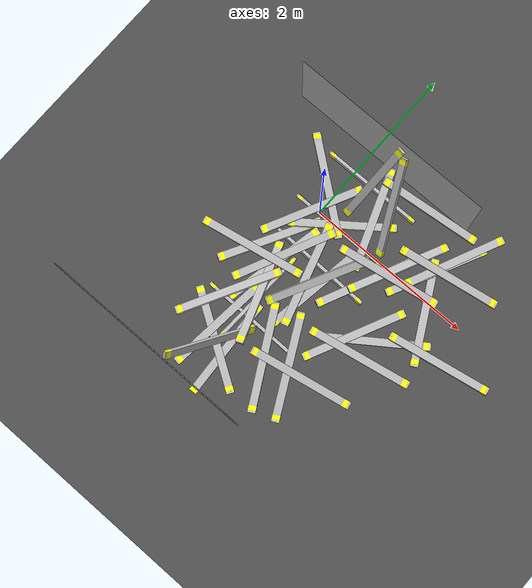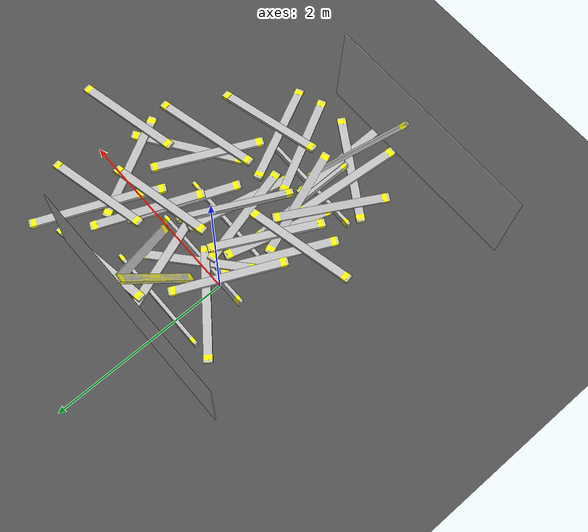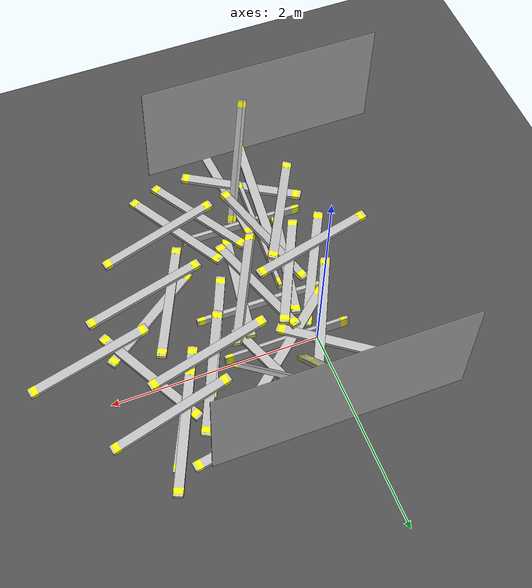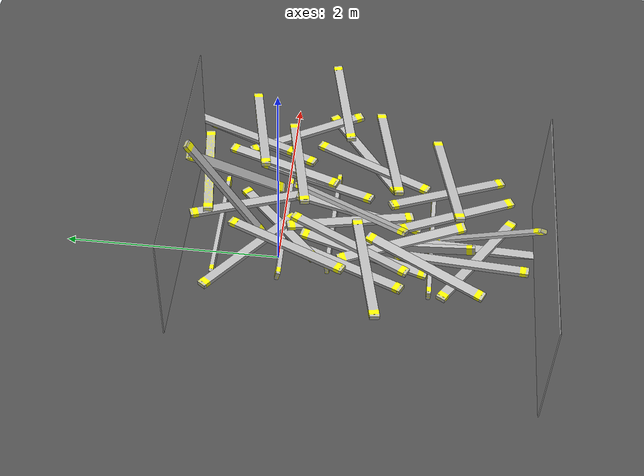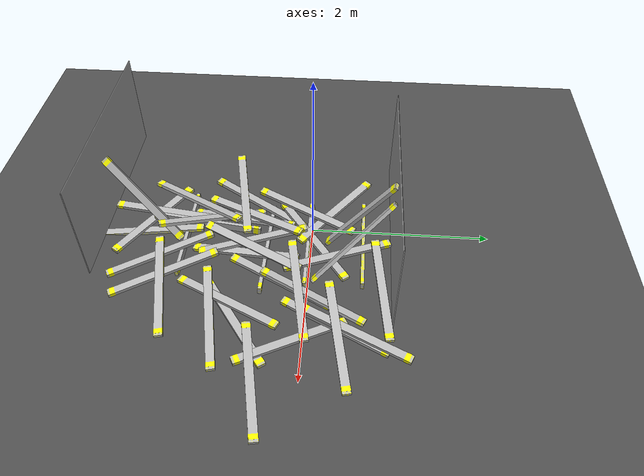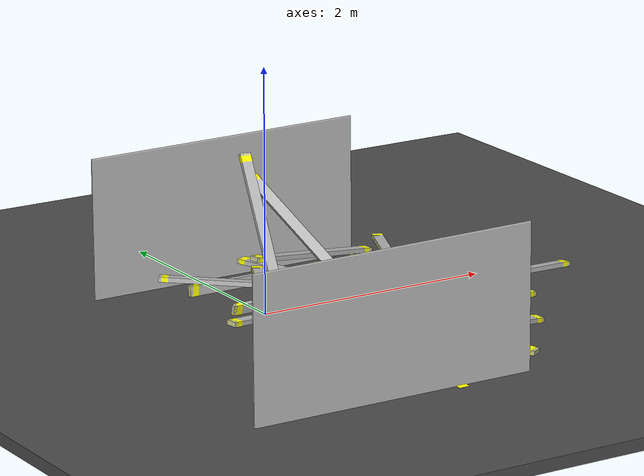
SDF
<sdf version="1.6">
 <world name="default">
  <model name="ground_plane">
   <static>1</static>
   <link name="link">
    <collision name="collision">
     <geometry><plane><normal>0 0 1</normal><size>100 100</size></plane></geometry>
     <surface><friction><ode><mu>100</mu><mu2>50</mu2></ode></friction></surface>
    </collision>
    <visual name="visual">
     <cast_shadows>0</cast_shadows>
     <geometry><plane><normal>0 0 1</normal><size>100 100</size></plane></geometry>
     <material>
      <script><uri>file://media/materials/scripts/gazebo.material</uri><name>Gazebo/Grey</name></script>
     </material>
    </visual>
   </link>
  </model>
  <model name="asphalt_plane">
   <static>1</static>
   <link name="link">
    <collision name="collision"><geometry><box><size>20 20 0.1</size></box></geometry></collision>
    <visual name="visual">
     <cast_shadows>0</cast_shadows>
     <geometry><box><size>20 20 0.1</size></box></geometry>
     <material>
      <script>
       <uri>model://asphalt_plane/materials/scripts</uri>
       <uri>model://asphalt_plane/materials/textures</uri>
       <name>vrc/asphalt</name>
      </script>
     </material>
    </visual>
   </link>
   <pose>0.013797 -0.037077 0 0 -0 0</pose>
  </model>
  <model name="nist_maze_wall_240">
   <static>1</static>
   <link name="nist__maze_wall_240_link">
    <collision name="collision">
     <geometry>
      <mesh><uri>model://nist_maze_wall_240/meshes/nist_maze_wall_240.dae</uri><scale>1 1 1</scale></mesh>
     </geometry>
    </collision>
    <visual name="visual">
     <geometry>
      <mesh><uri>model://nist_maze_wall_240/meshes/nist_maze_wall_240.dae</uri><scale>1 1 1</scale></mesh>
     </geometry>
    </visual>
   </link>
   <pose>1.36498 0.295254 0.622091 3.14159 -1.56495 3.14159</pose>
  </model>
  <model name="nist_maze_wall_240_clone">
   <static>1</static>
   <link name="nist__maze_wall_240_link">
    <collision name="collision">
     <geometry>
      <mesh><uri>model://nist_maze_wall_240/meshes/nist_maze_wall_240.dae</uri><scale>1 1 1</scale></mesh>
     </geometry>
    </collision>
    <visual name="visual">
     <geometry>
      <mesh><uri>model://nist_maze_wall_240/meshes/nist_maze_wall_240.dae</uri><scale>1 1 1</scale></mesh>
     </geometry>
    </visual>
   </link>
   <pose>0.867042 -2.96104 0.6203 3.14159 -1.56495 3.14159</pose>
  </model>
  <model name="lumber_2x4x48">
   <link name="link">
    <inertial>
     <mass>1.4111</mass>
     <inertia><ixx>0.0011</ixx><ixy>0</ixy><ixz>0</ixz><iyy>0.1771</iyy><iyz>0</iyz><izz>0.1763</izz></inertia>
    </inertial>
    <collision name="collision">
     <geometry><box><size>1.2192 0.038 0.0888</size></box></geometry>
     <surface>
      <bounce><restitution_coefficient>0.01</restitution_coefficient><threshold>5</threshold></bounce>
      <friction><ode><mu>5</mu><mu2>5</mu2></ode></friction>
      <contact>
       <ode>
        <soft_cfm>0.001</soft_cfm>
        <kp>10000</kp>
        <kd>1000</kd>
        <max_vel>0.01</max_vel>
        <min_depth>0.001</min_depth>
       </ode>
      </contact>
     </surface>
    </collision>
    <visual name="visual">
     <geometry><mesh><uri>model://drc_practice_2x4/meshes/2x4x48.dae</uri><scale>1 1 1</scale></mesh></geometry>
    </visual>
   </link>
   <pose>0.299809 -0.022151 0.093348 0.216763 -0.000303 0.002883</pose>
  </model>
  <model name="lumber_2x4x48_clone_1">
   <link name="link">
    <inertial>
     <mass>1.4111</mass>
     <inertia><ixx>0.0011</ixx><ixy>0</ixy><ixz>0</ixz><iyy>0.1771</iyy><iyz>0</iyz><izz>0.1763</izz></inertia>
    </inertial>
    <collision name="collision">
     <geometry><box><size>1.2192 0.038 0.0888</size></box></geometry>
     <surface>
      <bounce><restitution_coefficient>0.01</restitution_coefficient><threshold>5</threshold></bounce>
      <friction><ode><mu>5</mu><mu2>5</mu2></ode></friction>
      <contact>
       <ode>
        <soft_cfm>0.001</soft_cfm>
        <kp>10000</kp>
        <kd>1000</kd>
        <max_vel>0.01</max_vel>
        <min_depth>0.001</min_depth>
       </ode>
      </contact>
     </surface>
    </collision>
    <visual name="visual">
     <geometry><mesh><uri>model://drc_practice_2x4/meshes/2x4x48.dae</uri><scale>1 1 1</scale></mesh></geometry>
    </visual>
   </link>
   <pose>0.260186 0.579401 0.09277 -0.01427 -0.000237 0.001057</pose>
  </model>
  <model name="lumber_2x4x48_clone_2">
   <link name="link">
    <inertial>
     <mass>1.4111</mass>
     <inertia><ixx>0.0011</ixx><ixy>0</ixy><ixz>0</ixz><iyy>0.1771</iyy><iyz>0</iyz><izz>0.1763</izz></inertia>
    </inertial>
    <collision name="collision">
     <geometry><box><size>1.2192 0.038 0.0888</size></box></geometry>
     <surface>
      <bounce><restitution_coefficient>0.01</restitution_coefficient><threshold>5</threshold></bounce>
      <friction><ode><mu>5</mu><mu2>5</mu2></ode></friction>
      <contact>
       <ode>
        <soft_cfm>0.001</soft_cfm>
        <kp>10000</kp>
        <kd>1000</kd>
        <max_vel>0.01</max_vel>
        <min_depth>0.001</min_depth>
       </ode>
      </contact>
     </surface>
    </collision>
    <visual name="visual">
     <geometry><mesh><uri>model://drc_practice_2x4/meshes/2x4x48.dae</uri><scale>1 1 1</scale></mesh></geometry>
    </visual>
   </link>
   <pose>0.40343 -0.479826 0.106397 -0.072152 0.025249 -0.0211</pose>
  </model>
  <model name="lumber_2x4x48_clone_3_clone">
   <link name="link">
    <inertial>
     <mass>1.4111</mass>
     <inertia><ixx>0.0011</ixx><ixy>0</ixy><ixz>0</ixz><iyy>0.1771</iyy><iyz>0</iyz><izz>0.1763</izz></inertia>
    </inertial>
    <collision name="collision">
     <geometry><box><size>1.2192 0.038 0.0888</size></box></geometry>
     <surface>
      <bounce><restitution_coefficient>0.01</restitution_coefficient><threshold>5</threshold></bounce>
      <friction><ode><mu>5</mu><mu2>5</mu2></ode></friction>
      <contact>
       <ode>
        <soft_cfm>0.001</soft_cfm>
        <kp>10000</kp>
        <kd>1000</kd>
        <max_vel>0.01</max_vel>
        <min_depth>0.001</min_depth>
       </ode>
      </contact>
     </surface>
    </collision>
    <visual name="visual">
     <geometry><mesh><uri>model://drc_practice_2x4/meshes/2x4x48.dae</uri><scale>1 1 1</scale></mesh></geometry>
    </visual>
   </link>
   <pose>-0.116595 0.25156 0.213472 1.50046 0.031697 -0.657545</pose>
  </model>
  <model name="lumber_2x4x48_clone_3_clone_0_clone_0">
   <link name="link">
    <inertial>
     <mass>1.4111</mass>
     <inertia><ixx>0.0011</ixx><ixy>0</ixy><ixz>0</ixz><iyy>0.1771</iyy><iyz>0</iyz><izz>0.1763</izz></inertia>
    </inertial>
    <collision name="collision">
     <geometry><box><size>1.2192 0.038 0.0888</size></box></geometry>
     <surface>
      <bounce><restitution_coefficient>0.01</restitution_coefficient><threshold>5</threshold></bounce>
      <friction><ode><mu>5</mu><mu2>5</mu2></ode></friction>
      <contact>
       <ode>
        <soft_cfm>0.001</soft_cfm>
        <kp>10000</kp>
        <kd>1000</kd>
        <max_vel>0.01</max_vel>
        <min_depth>0.001</min_depth>
       </ode>
      </contact>
     </surface>
    </collision>
    <visual name="visual">
     <geometry><mesh><uri>model://drc_practice_2x4/meshes/2x4x48.dae</uri><scale>1 1 1</scale></mesh></geometry>
    </visual>
   </link>
   <pose>0.294475 0.029636 0.150905 1.51378 0.133494 0.678541</pose>
  </model>
  <model name="lumber_2x4x48_clone_3_clone_0_clone_0_clone_0">
   <link name="link">
    <inertial>
     <mass>1.4111</mass>
     <inertia><ixx>0.0011</ixx><ixy>0</ixy><ixz>0</ixz><iyy>0.1771</iyy><iyz>0</iyz><izz>0.1763</izz></inertia>
    </inertial>
    <collision name="collision">
     <geometry><box><size>1.2192 0.038 0.0888</size></box></geometry>
     <surface>
      <bounce><restitution_coefficient>0.01</restitution_coefficient><threshold>5</threshold></bounce>
      <friction><ode><mu>5</mu><mu2>5</mu2></ode></friction>
      <contact>
       <ode>
        <soft_cfm>0.001</soft_cfm>
        <kp>10000</kp>
        <kd>1000</kd>
        <max_vel>0.01</max_vel>
        <min_depth>0.001</min_depth>
       </ode>
      </contact>
     </surface>
    </collision>
    <visual name="visual">
     <geometry><mesh><uri>model://drc_practice_2x4/meshes/2x4x48.dae</uri><scale>1 1 1</scale></mesh></geometry>
    </visual>
   </link>
   <pose>0.068638 -1.83077 0.128017 1.61887 -0.029542 2.5735</pose>
  </model>
  <model name="lumber_2x4x48_clone_0_clone_0">
   <link name="link">
    <inertial>
     <mass>1.4111</mass>
     <inertia><ixx>0.0011</ixx><ixy>0</ixy><ixz>0</ixz><iyy>0.1771</iyy><iyz>0</iyz><izz>0.1763</izz></inertia>
    </inertial>
    <collision name="collision">
     <geometry><box><size>1.2192 0.038 0.0888</size></box></geometry>
     <surface>
      <bounce><restitution_coefficient>0.01</restitution_coefficient><threshold>5</threshold></bounce>
      <friction><ode><mu>5</mu><mu2>5</mu2></ode></friction>
      <contact>
       <ode>
        <soft_cfm>0.001</soft_cfm>
        <kp>10000</kp>
        <kd>1000</kd>
        <max_vel>0.01</max_vel>
        <min_depth>0.001</min_depth>
       </ode>
      </contact>
     </surface>
    </collision>
    <visual name="visual">
     <geometry><mesh><uri>model://drc_practice_2x4/meshes/2x4x48.dae</uri><scale>1 1 1</scale></mesh></geometry>
    </visual>
   </link>
   <pose>0.227233 -1.40603 0.089349 0.029567 0.000624 -0.008838</pose>
  </model>
  <model name="lumber_2x4x48_clone_3_clone_0_clone_1_clone_clone">
   <link name="link">
    <inertial>
     <mass>1.4111</mass>
     <inertia><ixx>0.0011</ixx><ixy>0</ixy><ixz>0</ixz><iyy>0.1771</iyy><iyz>0</iyz><izz>0.1763</izz></inertia>
    </inertial>
    <collision name="collision">
     <geometry><box><size>1.2192 0.038 0.0888</size></box></geometry>
     <surface>
      <bounce><restitution_coefficient>0.01</restitution_coefficient><threshold>5</threshold></bounce>
      <friction><ode><mu>5</mu><mu2>5</mu2></ode></friction>
      <contact>
       <ode>
        <soft_cfm>0.001</soft_cfm>
        <kp>10000</kp>
        <kd>1000</kd>
        <max_vel>0.01</max_vel>
        <min_depth>0.001</min_depth>
       </ode>
      </contact>
     </surface>
    </collision>
    <visual name="visual">
     <geometry><mesh><uri>model://drc_practice_2x4/meshes/2x4x48.dae</uri><scale>1 1 1</scale></mesh></geometry>
    </visual>
   </link>
   <pose>0.122564 -1.19447 0.156664 -0.001536 0.104658 1.54007</pose>
  </model>
  <model name="lumber_2x4x48_clone_3_clone_0_clone_1_clone_clone_0">
   <link name="link">
    <inertial>
     <mass>1.4111</mass>
     <inertia><ixx>0.0011</ixx><ixy>0</ixy><ixz>0</ixz><iyy>0.1771</iyy><iyz>0</iyz><izz>0.1763</izz></inertia>
    </inertial>
    <collision name="collision">
     <geometry><box><size>1.2192 0.038 0.0888</size></box></geometry>
     <surface>
      <bounce><restitution_coefficient>0.01</restitution_coefficient><threshold>5</threshold></bounce>
      <friction><ode><mu>5</mu><mu2>5</mu2></ode></friction>
      <contact>
       <ode>
        <soft_cfm>0.001</soft_cfm>
        <kp>10000</kp>
        <kd>1000</kd>
        <max_vel>0.01</max_vel>
        <min_depth>0.001</min_depth>
       </ode>
      </contact>
     </surface>
    </collision>
    <visual name="visual">
     <geometry><mesh><uri>model://drc_practice_2x4/meshes/2x4x48.dae</uri><scale>1 1 1</scale></mesh></geometry>
    </visual>
   </link>
   <pose>0.521841 -0.706496 0.138551 1.61232 -0.114029 1.40547</pose>
  </model>
  <model name="lumber_2x4x48_clone_3_clone_0_clone_clone_0">
   <link name="link">
    <inertial>
     <mass>1.4111</mass>
     <inertia><ixx>0.0011</ixx><ixy>0</ixy><ixz>0</ixz><iyy>0.1771</iyy><iyz>0</iyz><izz>0.1763</izz></inertia>
    </inertial>
    <collision name="collision">
     <geometry><box><size>1.2192 0.038 0.0888</size></box></geometry>
     <surface>
      <bounce><restitution_coefficient>0.01</restitution_coefficient><threshold>5</threshold></bounce>
      <friction><ode><mu>5</mu><mu2>5</mu2></ode></friction>
      <contact>
       <ode>
        <soft_cfm>0.001</soft_cfm>
        <kp>10000</kp>
        <kd>1000</kd>
        <max_vel>0.01</max_vel>
        <min_depth>0.001</min_depth>
       </ode>
      </contact>
     </surface>
    </collision>
    <visual name="visual">
     <geometry><mesh><uri>model://drc_practice_2x4/meshes/2x4x48.dae</uri><scale>1 1 1</scale></mesh></geometry>
    </visual>
   </link>
   <pose>1.3955 -0.708259 0.066325 1.55393 0.000566 0.618301</pose>
  </model>
  <model name="lumber_2x4x48_clone_3_clone_0_clone_1_clone_clone_3">
   <link name="link">
    <inertial>
     <mass>1.4111</mass>
     <inertia><ixx>0.0011</ixx><ixy>0</ixy><ixz>0</ixz><iyy>0.1771</iyy><iyz>0</iyz><izz>0.1763</izz></inertia>
    </inertial>
    <collision name="collision">
     <geometry><box><size>1.2192 0.038 0.0888</size></box></geometry>
     <surface>
      <bounce><restitution_coefficient>0.01</restitution_coefficient><threshold>5</threshold></bounce>
      <friction><ode><mu>5</mu><mu2>5</mu2></ode></friction>
      <contact>
       <ode>
        <soft_cfm>0.001</soft_cfm>
        <kp>10000</kp>
        <kd>1000</kd>
        <max_vel>0.01</max_vel>
        <min_depth>0.001</min_depth>
       </ode>
      </contact>
     </surface>
    </collision>
    <visual name="visual">
     <geometry><mesh><uri>model://drc_practice_2x4/meshes/2x4x48.dae</uri><scale>1 1 1</scale></mesh></geometry>
    </visual>
   </link>
   <pose>0.011224 -0.78563 0.145827 1.47225 -0.113051 1.34703</pose>
  </model>
  <model name="lumber_2x4x48_clone_3_clone_0_clone_1_clone_0">
   <link name="link">
    <inertial>
     <mass>1.4111</mass>
     <inertia><ixx>0.0011</ixx><ixy>0</ixy><ixz>0</ixz><iyy>0.1771</iyy><iyz>0</iyz><izz>0.1763</izz></inertia>
    </inertial>
    <collision name="collision">
     <geometry><box><size>1.2192 0.038 0.0888</size></box></geometry>
     <surface>
      <bounce><restitution_coefficient>0.01</restitution_coefficient><threshold>5</threshold></bounce>
      <friction><ode><mu>5</mu><mu2>5</mu2></ode></friction>
      <contact>
       <ode>
        <soft_cfm>0.001</soft_cfm>
        <kp>10000</kp>
        <kd>1000</kd>
        <max_vel>0.01</max_vel>
        <min_depth>0.001</min_depth>
       </ode>
      </contact>
     </surface>
    </collision>
    <visual name="visual">
     <geometry><mesh><uri>model://drc_practice_2x4/meshes/2x4x48.dae</uri><scale>1 1 1</scale></mesh></geometry>
    </visual>
   </link>
   <pose>0.285411 0.522611 0.557321 1.58891 -0.955968 1.41395</pose>
  </model>
  <model name="lumber_2x4x48_clone_3_clone_0_clone_1_clone_1">
   <link name="link">
    <inertial>
     <mass>1.4111</mass>
     <inertia><ixx>0.0011</ixx><ixy>0</ixy><ixz>0</ixz><iyy>0.1771</iyy><iyz>0</iyz><izz>0.1763</izz></inertia>
    </inertial>
    <collision name="collision">
     <geometry><box><size>1.2192 0.038 0.0888</size></box></geometry>
     <surface>
      <bounce><restitution_coefficient>0.01</restitution_coefficient><threshold>5</threshold></bounce>
      <friction><ode><mu>5</mu><mu2>5</mu2></ode></friction>
      <contact>
       <ode>
        <soft_cfm>0.001</soft_cfm>
        <kp>10000</kp>
        <kd>1000</kd>
        <max_vel>0.01</max_vel>
        <min_depth>0.001</min_depth>
       </ode>
      </contact>
     </surface>
    </collision>
    <visual name="visual">
     <geometry><mesh><uri>model://drc_practice_2x4/meshes/2x4x48.dae</uri><scale>1 1 1</scale></mesh></geometry>
    </visual>
   </link>
   <pose>-0.019981 -1.68158 0.164661 -1.62173 -0.035128 -1.66607</pose>
  </model>
  <model name="lumber_2x4x48_clone_3_clone_0_clone_1_clone_2">
   <link name="link">
    <inertial>
     <mass>1.4111</mass>
     <inertia><ixx>0.0011</ixx><ixy>0</ixy><ixz>0</ixz><iyy>0.1771</iyy><iyz>0</iyz><izz>0.1763</izz></inertia>
    </inertial>
    <collision name="collision">
     <geometry><box><size>1.2192 0.038 0.0888</size></box></geometry>
     <surface>
      <bounce><restitution_coefficient>0.01</restitution_coefficient><threshold>5</threshold></bounce>
      <friction><ode><mu>5</mu><mu2>5</mu2></ode></friction>
      <contact>
       <ode>
        <soft_cfm>0.001</soft_cfm>
        <kp>10000</kp>
        <kd>1000</kd>
        <max_vel>0.01</max_vel>
        <min_depth>0.001</min_depth>
       </ode>
      </contact>
     </surface>
    </collision>
    <visual name="visual">
     <geometry><mesh><uri>model://drc_practice_2x4/meshes/2x4x48.dae</uri><scale>1 1 1</scale></mesh></geometry>
    </visual>
   </link>
   <pose>0.224885 -1.82956 0.09117 -1.56318 0.103382 -1.52226</pose>
  </model>
  <model name="lumber_2x4x48_clone_3_clone_0_clone_clone_0_clone_0_clone">
   <link name="link">
    <inertial>
     <mass>1.4111</mass>
     <inertia><ixx>0.0011</ixx><ixy>0</ixy><ixz>0</ixz><iyy>0.1771</iyy><iyz>0</iyz><izz>0.1763</izz></inertia>
    </inertial>
    <collision name="collision">
     <geometry><box><size>1.2192 0.038 0.0888</size></box></geometry>
     <surface>
      <bounce><restitution_coefficient>0.01</restitution_coefficient><threshold>5</threshold></bounce>
      <friction><ode><mu>5</mu><mu2>5</mu2></ode></friction>
      <contact>
       <ode>
        <soft_cfm>0.001</soft_cfm>
        <kp>10000</kp>
        <kd>1000</kd>
        <max_vel>0.01</max_vel>
        <min_depth>0.001</min_depth>
       </ode>
      </contact>
     </surface>
    </collision>
    <visual name="visual">
     <geometry><mesh><uri>model://drc_practice_2x4/meshes/2x4x48.dae</uri><scale>1 1 1</scale></mesh></geometry>
    </visual>
   </link>
   <pose>0.606662 0.461635 0.473095 -0.906832 0.700177 -1.1021</pose>
  </model>
  <model name="lumber_2x4x48_clone_3_clone_0_clone_clone_0_clone_0_clone_0">
   <link name="link">
    <inertial>
     <mass>1.4111</mass>
     <inertia><ixx>0.0011</ixx><ixy>0</ixy><ixz>0</ixz><iyy>0.1771</iyy><iyz>0</iyz><izz>0.1763</izz></inertia>
    </inertial>
    <collision name="collision">
     <geometry><box><size>1.2192 0.038 0.0888</size></box></geometry>
     <surface>
      <bounce><restitution_coefficient>0.01</restitution_coefficient><threshold>5</threshold></bounce>
      <friction><ode><mu>5</mu><mu2>5</mu2></ode></friction>
      <contact>
       <ode>
        <soft_cfm>0.001</soft_cfm>
        <kp>10000</kp>
        <kd>1000</kd>
        <max_vel>0.01</max_vel>
        <min_depth>0.001</min_depth>
       </ode>
      </contact>
     </surface>
    </collision>
    <visual name="visual">
     <geometry><mesh><uri>model://drc_practice_2x4/meshes/2x4x48.dae</uri><scale>1 1 1</scale></mesh></geometry>
    </visual>
   </link>
   <pose>0.10718 -1.12676 0.227917 -1.37828 -0.109397 -1.22917</pose>
  </model>
  <model name="lumber_2x4x48_clone_3_clone_0_clone_clone_0_clone_0_clone_3">
   <link name="link">
    <inertial>
     <mass>1.4111</mass>
     <inertia><ixx>0.0011</ixx><ixy>0</ixy><ixz>0</ixz><iyy>0.1771</iyy><iyz>0</iyz><izz>0.1763</izz></inertia>
    </inertial>
    <collision name="collision">
     <geometry><box><size>1.2192 0.038 0.0888</size></box></geometry>
     <surface>
      <bounce><restitution_coefficient>0.01</restitution_coefficient><threshold>5</threshold></bounce>
      <friction><ode><mu>5</mu><mu2>5</mu2></ode></friction>
      <contact>
       <ode>
        <soft_cfm>0.001</soft_cfm>
        <kp>10000</kp>
        <kd>1000</kd>
        <max_vel>0.01</max_vel>
        <min_depth>0.001</min_depth>
       </ode>
      </contact>
     </surface>
    </collision>
    <visual name="visual">
     <geometry><mesh><uri>model://drc_practice_2x4/meshes/2x4x48.dae</uri><scale>1 1 1</scale></mesh></geometry>
    </visual>
   </link>
   <pose>0.365817 -0.638747 0.179042 -1.50341 0.094534 -1.28603</pose>
  </model>
  <model name="lumber_2x4x48_clone_3_clone_0_clone_clone_0_clone_0_clone_4">
   <link name="link">
    <inertial>
     <mass>1.4111</mass>
     <inertia><ixx>0.0011</ixx><ixy>0</ixy><ixz>0</ixz><iyy>0.1771</iyy><iyz>0</iyz><izz>0.1763</izz></inertia>
    </inertial>
    <collision name="collision">
     <geometry><box><size>1.2192 0.038 0.0888</size></box></geometry>
     <surface>
      <bounce><restitution_coefficient>0.01</restitution_coefficient><threshold>5</threshold></bounce>
      <friction><ode><mu>5</mu><mu2>5</mu2></ode></friction>
      <contact>
       <ode>
        <soft_cfm>0.001</soft_cfm>
        <kp>10000</kp>
        <kd>1000</kd>
        <max_vel>0.01</max_vel>
        <min_depth>0.001</min_depth>
       </ode>
      </contact>
     </surface>
    </collision>
    <visual name="visual">
     <geometry><mesh><uri>model://drc_practice_2x4/meshes/2x4x48.dae</uri><scale>1 1 1</scale></mesh></geometry>
    </visual>
   </link>
   <pose>0.864944 -1.53555 0.135789 -1.57089 0.112029 -1.09624</pose>
  </model>
  <model name="lumber_2x4x48_clone_3_clone_0_clone_clone_0_clone_0_clone_5">
   <link name="link">
    <inertial>
     <mass>1.4111</mass>
     <inertia><ixx>0.0011</ixx><ixy>0</ixy><ixz>0</ixz><iyy>0.1771</iyy><iyz>0</iyz><izz>0.1763</izz></inertia>
    </inertial>
    <collision name="collision">
     <geometry><box><size>1.2192 0.038 0.0888</size></box></geometry>
     <surface>
      <bounce><restitution_coefficient>0.01</restitution_coefficient><threshold>5</threshold></bounce>
      <friction><ode><mu>5</mu><mu2>5</mu2></ode></friction>
      <contact>
       <ode>
        <soft_cfm>0.001</soft_cfm>
        <kp>10000</kp>
        <kd>1000</kd>
        <max_vel>0.01</max_vel>
        <min_depth>0.001</min_depth>
       </ode>
      </contact>
     </surface>
    </collision>
    <visual name="visual">
     <geometry><mesh><uri>model://drc_practice_2x4/meshes/2x4x48.dae</uri><scale>1 1 1</scale></mesh></geometry>
    </visual>
   </link>
   <pose>1.59935 -0.109616 0.085956 -1.58206 -0.033671 -1.07877</pose>
  </model>
  <model name="lumber_2x4x48_clone_3_clone_0_clone_clone_0_clone_0_clone_8">
   <link name="link">
    <inertial>
     <mass>1.4111</mass>
     <inertia><ixx>0.0011</ixx><ixy>0</ixy><ixz>0</ixz><iyy>0.1771</iyy><iyz>0</iyz><izz>0.1763</izz></inertia>
    </inertial>
    <collision name="collision">
     <geometry><box><size>1.2192 0.038 0.0888</size></box></geometry>
     <surface>
      <bounce><restitution_coefficient>0.01</restitution_coefficient><threshold>5</threshold></bounce>
      <friction><ode><mu>5</mu><mu2>5</mu2></ode></friction>
      <contact>
       <ode>
        <soft_cfm>0.001</soft_cfm>
        <kp>10000</kp>
        <kd>1000</kd>
        <max_vel>0.01</max_vel>
        <min_depth>0.001</min_depth>
       </ode>
      </contact>
     </surface>
    </collision>
    <visual name="visual">
     <geometry><mesh><uri>model://drc_practice_2x4/meshes/2x4x48.dae</uri><scale>1 1 1</scale></mesh></geometry>
    </visual>
   </link>
   <pose>0.595626 -1.63115 0.12749 1.62221 0.094399 -1.07543</pose>
  </model>
  <model name="lumber_2x4x48_clone_3_clone_0_clone_clone_0_clone_0_clone_10">
   <link name="link">
    <inertial>
     <mass>1.4111</mass>
     <inertia><ixx>0.0011</ixx><ixy>0</ixy><ixz>0</ixz><iyy>0.1771</iyy><iyz>0</iyz><izz>0.1763</izz></inertia>
    </inertial>
    <collision name="collision">
     <geometry><box><size>1.2192 0.038 0.0888</size></box></geometry>
     <surface>
      <bounce><restitution_coefficient>0.01</restitution_coefficient><threshold>5</threshold></bounce>
      <friction><ode><mu>5</mu><mu2>5</mu2></ode></friction>
      <contact>
       <ode>
        <soft_cfm>0.001</soft_cfm>
        <kp>10000</kp>
        <kd>1000</kd>
        <max_vel>0.01</max_vel>
        <min_depth>0.001</min_depth>
       </ode>
      </contact>
     </surface>
    </collision>
    <visual name="visual">
     <geometry><mesh><uri>model://drc_practice_2x4/meshes/2x4x48.dae</uri><scale>1 1 1</scale></mesh></geometry>
    </visual>
   </link>
   <pose>0.513111 0.302192 0.162434 -1.56505 0.016705 -1.21567</pose>
  </model>
  <model name="lumber_2x4x48_clone_3_clone_0_clone_clone_0_clone_0_clone_11_clone">
   <link name="link">
    <inertial>
     <mass>1.4111</mass>
     <inertia><ixx>0.0011</ixx><ixy>0</ixy><ixz>0</ixz><iyy>0.1771</iyy><iyz>0</iyz><izz>0.1763</izz></inertia>
    </inertial>
    <collision name="collision">
     <geometry><box><size>1.2192 0.038 0.0888</size></box></geometry>
     <surface>
      <bounce><restitution_coefficient>0.01</restitution_coefficient><threshold>5</threshold></bounce>
      <friction><ode><mu>5</mu><mu2>5</mu2></ode></friction>
      <contact>
       <ode>
        <soft_cfm>0.001</soft_cfm>
        <kp>10000</kp>
        <kd>1000</kd>
        <max_vel>0.01</max_vel>
        <min_depth>0.001</min_depth>
       </ode>
      </contact>
     </surface>
    </collision>
    <visual name="visual">
     <geometry><mesh><uri>model://drc_practice_2x4/meshes/2x4x48.dae</uri><scale>1 1 1</scale></mesh></geometry>
    </visual>
   </link>
   <pose>0.088234 -1.89288 0.451214 0.688234 -0.6451 -2.04294</pose>
  </model>
  <model name="lumber_2x4x48_clone_3_clone_0_clone_clone_0_clone_0_clone_11_clone_1">
   <link name="link">
    <inertial>
     <mass>1.4111</mass>
     <inertia><ixx>0.0011</ixx><ixy>0</ixy><ixz>0</ixz><iyy>0.1771</iyy><iyz>0</iyz><izz>0.1763</izz></inertia>
    </inertial>
    <collision name="collision">
     <geometry><box><size>1.2192 0.038 0.0888</size></box></geometry>
     <surface>
      <bounce><restitution_coefficient>0.01</restitution_coefficient><threshold>5</threshold></bounce>
      <friction><ode><mu>5</mu><mu2>5</mu2></ode></friction>
      <contact>
       <ode>
        <soft_cfm>0.001</soft_cfm>
        <kp>10000</kp>
        <kd>1000</kd>
        <max_vel>0.01</max_vel>
        <min_depth>0.001</min_depth>
       </ode>
      </contact>
     </surface>
    </collision>
    <visual name="visual">
     <geometry><mesh><uri>model://drc_practice_2x4/meshes/2x4x48.dae</uri><scale>1 1 1</scale></mesh></geometry>
    </visual>
   </link>
   <pose>-0.196885 -0.61826 0.202233 1.60048 -0.115759 -2.0561</pose>
  </model>
  <model name="lumber_2x4x48_clone_3_clone_0_clone_clone_0_clone_0_clone_11_clone_4">
   <link name="link">
    <inertial>
     <mass>1.4111</mass>
     <inertia><ixx>0.0011</ixx><ixy>0</ixy><ixz>0</ixz><iyy>0.1771</iyy><iyz>0</iyz><izz>0.1763</izz></inertia>
    </inertial>
    <collision name="collision">
     <geometry><box><size>1.2192 0.038 0.0888</size></box></geometry>
     <surface>
      <bounce><restitution_coefficient>0.01</restitution_coefficient><threshold>5</threshold></bounce>
      <friction><ode><mu>5</mu><mu2>5</mu2></ode></friction>
      <contact>
       <ode>
        <soft_cfm>0.001</soft_cfm>
        <kp>10000</kp>
        <kd>1000</kd>
        <max_vel>0.01</max_vel>
        <min_depth>0.001</min_depth>
       </ode>
      </contact>
     </surface>
    </collision>
    <visual name="visual">
     <geometry><mesh><uri>model://drc_practice_2x4/meshes/2x4x48.dae</uri><scale>1 1 1</scale></mesh></geometry>
    </visual>
   </link>
   <pose>-0.154399 -1.34676 0.236722 -1.40062 0.027752 -2.07064</pose>
  </model>
  <model name="lumber_2x4x48_clone_3_clone_0_clone_clone_0_clone_0_clone_11_clone_5">
   <link name="link">
    <inertial>
     <mass>1.4111</mass>
     <inertia><ixx>0.0011</ixx><ixy>0</ixy><ixz>0</ixz><iyy>0.1771</iyy><iyz>0</iyz><izz>0.1763</izz></inertia>
    </inertial>
    <collision name="collision">
     <geometry><box><size>1.2192 0.038 0.0888</size></box></geometry>
     <surface>
      <bounce><restitution_coefficient>0.01</restitution_coefficient><threshold>5</threshold></bounce>
      <friction><ode><mu>5</mu><mu2>5</mu2></ode></friction>
      <contact>
       <ode>
        <soft_cfm>0.001</soft_cfm>
        <kp>10000</kp>
        <kd>1000</kd>
        <max_vel>0.01</max_vel>
        <min_depth>0.001</min_depth>
       </ode>
      </contact>
     </surface>
    </collision>
    <visual name="visual">
     <geometry><mesh><uri>model://drc_practice_2x4/meshes/2x4x48.dae</uri><scale>1 1 1</scale></mesh></geometry>
    </visual>
   </link>
   <pose>0.034982 -0.650134 0.238507 -1.65138 0.048189 -2.02357</pose>
  </model>
  <model name="lumber_2x4x48_clone_3_clone_0_clone_clone_0_clone_0_clone_11_clone_6">
   <link name="link">
    <inertial>
     <mass>1.4111</mass>
     <inertia><ixx>0.0011</ixx><ixy>0</ixy><ixz>0</ixz><iyy>0.1771</iyy><iyz>0</iyz><izz>0.1763</izz></inertia>
    </inertial>
    <collision name="collision">
     <geometry><box><size>1.2192 0.038 0.0888</size></box></geometry>
     <surface>
      <bounce><restitution_coefficient>0.01</restitution_coefficient><threshold>5</threshold></bounce>
      <friction><ode><mu>5</mu><mu2>5</mu2></ode></friction>
      <contact>
       <ode>
        <soft_cfm>0.001</soft_cfm>
        <kp>10000</kp>
        <kd>1000</kd>
        <max_vel>0.01</max_vel>
        <min_depth>0.001</min_depth>
       </ode>
      </contact>
     </surface>
    </collision>
    <visual name="visual">
     <geometry><mesh><uri>model://drc_practice_2x4/meshes/2x4x48.dae</uri><scale>1 1 1</scale></mesh></geometry>
    </visual>
   </link>
   <pose>0.901743 -0.273884 0.132847 1.58866 -0.106083 -1.99395</pose>
  </model>
  <model name="lumber_2x4x48_clone_3_clone_0_clone_clone_0_clone_0_clone_11_clone_7">
   <link name="link">
    <inertial>
     <mass>1.4111</mass>
     <inertia><ixx>0.0011</ixx><ixy>0</ixy><ixz>0</ixz><iyy>0.1771</iyy><iyz>0</iyz><izz>0.1763</izz></inertia>
    </inertial>
    <collision name="collision">
     <geometry><box><size>1.2192 0.038 0.0888</size></box></geometry>
     <surface>
      <bounce><restitution_coefficient>0.01</restitution_coefficient><threshold>5</threshold></bounce>
      <friction><ode><mu>5</mu><mu2>5</mu2></ode></friction>
      <contact>
       <ode>
        <soft_cfm>0.001</soft_cfm>
        <kp>10000</kp>
        <kd>1000</kd>
        <max_vel>0.01</max_vel>
        <min_depth>0.001</min_depth>
       </ode>
      </contact>
     </surface>
    </collision>
    <visual name="visual">
     <geometry><mesh><uri>model://drc_practice_2x4/meshes/2x4x48.dae</uri><scale>1 1 1</scale></mesh></geometry>
    </visual>
   </link>
   <pose>0.497555 -0.623913 0.221162 1.1292 -0.029481 -2.0391</pose>
  </model>
  <model name="lumber_2x4x48_clone_3_clone_0_clone_clone_0_clone_0_clone_11_clone_10">
   <link name="link">
    <inertial>
     <mass>1.4111</mass>
     <inertia><ixx>0.0011</ixx><ixy>0</ixy><ixz>0</ixz><iyy>0.1771</iyy><iyz>0</iyz><izz>0.1763</izz></inertia>
    </inertial>
    <collision name="collision">
     <geometry><box><size>1.2192 0.038 0.0888</size></box></geometry>
     <surface>
      <bounce><restitution_coefficient>0.01</restitution_coefficient><threshold>5</threshold></bounce>
      <friction><ode><mu>5</mu><mu2>5</mu2></ode></friction>
      <contact>
       <ode>
        <soft_cfm>0.001</soft_cfm>
        <kp>10000</kp>
        <kd>1000</kd>
        <max_vel>0.01</max_vel>
        <min_depth>0.001</min_depth>
       </ode>
      </contact>
     </surface>
    </collision>
    <visual name="visual">
     <geometry><mesh><uri>model://drc_practice_2x4/meshes/2x4x48.dae</uri><scale>1 1 1</scale></mesh></geometry>
    </visual>
   </link>
   <pose>1.17819 -0.806267 0.101525 1.57773 -0.008492 -2.01799</pose>
  </model>
  <model name="lumber_2x4x48_clone_3_clone_0_clone_clone_0_clone_0_clone_11_clone_11">
   <link name="link">
    <inertial>
     <mass>1.4111</mass>
     <inertia><ixx>0.0011</ixx><ixy>0</ixy><ixz>0</ixz><iyy>0.1771</iyy><iyz>0</iyz><izz>0.1763</izz></inertia>
    </inertial>
    <collision name="collision">
     <geometry><box><size>1.2192 0.038 0.0888</size></box></geometry>
     <surface>
      <bounce><restitution_coefficient>0.01</restitution_coefficient><threshold>5</threshold></bounce>
      <friction><ode><mu>5</mu><mu2>5</mu2></ode></friction>
      <contact>
       <ode>
        <soft_cfm>0.001</soft_cfm>
        <kp>10000</kp>
        <kd>1000</kd>
        <max_vel>0.01</max_vel>
        <min_depth>0.001</min_depth>
       </ode>
      </contact>
     </surface>
    </collision>
    <visual name="visual">
     <geometry><mesh><uri>model://drc_practice_2x4/meshes/2x4x48.dae</uri><scale>1 1 1</scale></mesh></geometry>
    </visual>
   </link>
   <pose>1.40571 0.314827 0.102413 1.57192 -0.05497 -2.01801</pose>
  </model>
  <model name="lumber_2x4x48_clone_3_clone_0_clone_clone_0_clone_0_clone_11_clone_12">
   <link name="link">
    <inertial>
     <mass>1.4111</mass>
     <inertia><ixx>0.0011</ixx><ixy>0</ixy><ixz>0</ixz><iyy>0.1771</iyy><iyz>0</iyz><izz>0.1763</izz></inertia>
    </inertial>
    <collision name="collision">
     <geometry><box><size>1.2192 0.038 0.0888</size></box></geometry>
     <surface>
      <bounce><restitution_coefficient>0.01</restitution_coefficient><threshold>5</threshold></bounce>
      <friction><ode><mu>5</mu><mu2>5</mu2></ode></friction>
      <contact>
       <ode>
        <soft_cfm>0.001</soft_cfm>
        <kp>10000</kp>
        <kd>1000</kd>
        <max_vel>0.01</max_vel>
        <min_depth>0.001</min_depth>
       </ode>
      </contact>
     </surface>
    </collision>
    <visual name="visual">
     <geometry><mesh><uri>model://drc_practice_2x4/meshes/2x4x48.dae</uri><scale>1 1 1</scale></mesh></geometry>
    </visual>
   </link>
   <pose>1.48989 0.525493 0.125449 1.54331 -0.053922 -1.99667</pose>
  </model>
  <model name="lumber_2x4x48_clone_3_clone_0_clone_clone_0_clone_0_clone_11_clone_13">
   <link name="link">
    <inertial>
     <mass>1.4111</mass>
     <inertia><ixx>0.0011</ixx><ixy>0</ixy><ixz>0</ixz><iyy>0.1771</iyy><iyz>0</iyz><izz>0.1763</izz></inertia>
    </inertial>
    <collision name="collision">
     <geometry><box><size>1.2192 0.038 0.0888</size></box></geometry>
     <surface>
      <bounce><restitution_coefficient>0.01</restitution_coefficient><threshold>5</threshold></bounce>
      <friction><ode><mu>5</mu><mu2>5</mu2></ode></friction>
      <contact>
       <ode>
        <soft_cfm>0.001</soft_cfm>
        <kp>10000</kp>
        <kd>1000</kd>
        <max_vel>0.01</max_vel>
        <min_depth>0.001</min_depth>
       </ode>
      </contact>
     </surface>
    </collision>
    <visual name="visual">
     <geometry><mesh><uri>model://drc_practice_2x4/meshes/2x4x48.dae</uri><scale>1 1 1</scale></mesh></geometry>
    </visual>
   </link>
   <pose>1.07153 0.068197 0.136504 1.72436 -0.102272 -2.0066</pose>
  </model>
  <model name="lumber_2x4x48_clone_3_clone_0_clone_clone_0_clone_0_clone_11_clone_14">
   <link name="link">
    <inertial>
     <mass>1.4111</mass>
     <inertia><ixx>0.0011</ixx><ixy>0</ixy><ixz>0</ixz><iyy>0.1771</iyy><iyz>0</iyz><izz>0.1763</izz></inertia>
    </inertial>
    <collision name="collision">
     <geometry><box><size>1.2192 0.038 0.0888</size></box></geometry>
     <surface>
      <bounce><restitution_coefficient>0.01</restitution_coefficient><threshold>5</threshold></bounce>
      <friction><ode><mu>5</mu><mu2>5</mu2></ode></friction>
      <contact>
       <ode>
        <soft_cfm>0.001</soft_cfm>
        <kp>10000</kp>
        <kd>1000</kd>
        <max_vel>0.01</max_vel>
        <min_depth>0.001</min_depth>
       </ode>
      </contact>
     </surface>
    </collision>
    <visual name="visual">
     <geometry><mesh><uri>model://drc_practice_2x4/meshes/2x4x48.dae</uri><scale>1 1 1</scale></mesh></geometry>
    </visual>
   </link>
   <pose>-0.058442 -0.074377 0.255552 1.52743 -0.053313 -2.02341</pose>
  </model>
  <model name="lumber_2x4x48_clone_3_clone_0_clone_clone_0_clone_0_clone_11_clone_14_clone">
   <link name="link">
    <inertial>
     <mass>1.4111</mass>
     <inertia><ixx>0.0011</ixx><ixy>0</ixy><ixz>0</ixz><iyy>0.1771</iyy><iyz>0</iyz><izz>0.1763</izz></inertia>
    </inertial>
    <collision name="collision">
     <geometry><box><size>1.2192 0.038 0.0888</size></box></geometry>
     <surface>
      <bounce><restitution_coefficient>0.01</restitution_coefficient><threshold>5</threshold></bounce>
      <friction><ode><mu>5</mu><mu2>5</mu2></ode></friction>
      <contact>
       <ode>
        <soft_cfm>0.001</soft_cfm>
        <kp>10000</kp>
        <kd>1000</kd>
        <max_vel>0.01</max_vel>
        <min_depth>0.001</min_depth>
       </ode>
      </contact>
     </surface>
    </collision>
    <visual name="visual">
     <geometry><mesh><uri>model://drc_practice_2x4/meshes/2x4x48.dae</uri><scale>1 1 1</scale></mesh></geometry>
    </visual>
   </link>
   <pose>-0.271567 -0.818626 0.290732 1.54 -0.068554 -2.94354</pose>
  </model>
  <model name="lumber_2x4x48_clone_3_clone_0_clone_clone_0_clone_0_clone_11_clone_14_clone_clone">
   <link name="link">
    <inertial>
     <mass>1.4111</mass>
     <inertia><ixx>0.0011</ixx><ixy>0</ixy><ixz>0</ixz><iyy>0.1771</iyy><iyz>0</iyz><izz>0.1763</izz></inertia>
    </inertial>
    <collision name="collision">
     <geometry><box><size>1.2192 0.038 0.0888</size></box></geometry>
     <surface>
      <bounce><restitution_coefficient>0.01</restitution_coefficient><threshold>5</threshold></bounce>
      <friction><ode><mu>5</mu><mu2>5</mu2></ode></friction>
      <contact>
       <ode>
        <soft_cfm>0.001</soft_cfm>
        <kp>10000</kp>
        <kd>1000</kd>
        <max_vel>0.01</max_vel>
        <min_depth>0.001</min_depth>
       </ode>
      </contact>
     </surface>
    </collision>
    <visual name="visual">
     <geometry><mesh><uri>model://drc_practice_2x4/meshes/2x4x48.dae</uri><scale>1 1 1</scale></mesh></geometry>
    </visual>
   </link>
   <pose>1.37797 -0.955055 0.118907 1.52068 -0.080779 -2.94177</pose>
  </model>
  <model name="lumber_2x4x48_clone_3_clone_0_clone_clone_0_clone_0_clone_11_clone_14_clone_clone_0">
   <link name="link">
    <inertial>
     <mass>1.4111</mass>
     <inertia><ixx>0.0011</ixx><ixy>0</ixy><ixz>0</ixz><iyy>0.1771</iyy><iyz>0</iyz><izz>0.1763</izz></inertia>
    </inertial>
    <collision name="collision">
     <geometry><box><size>1.2192 0.038 0.0888</size></box></geometry>
     <surface>
      <bounce><restitution_coefficient>0.01</restitution_coefficient><threshold>5</threshold></bounce>
      <friction><ode><mu>5</mu><mu2>5</mu2></ode></friction>
      <contact>
       <ode>
        <soft_cfm>0.001</soft_cfm>
        <kp>10000</kp>
        <kd>1000</kd>
        <max_vel>0.01</max_vel>
        <min_depth>0.001</min_depth>
       </ode>
      </contact>
     </surface>
    </collision>
    <visual name="visual">
     <geometry><mesh><uri>model://drc_practice_2x4/meshes/2x4x48.dae</uri><scale>1 1 1</scale></mesh></geometry>
    </visual>
   </link>
   <pose>1.04823 -0.082891 0.219542 1.52313 -0.113246 -2.95382</pose>
  </model>
  <model name="lumber_2x4x48_clone_3_clone_0_clone_clone_0_clone_0_clone_11_clone_14_clone_clone_1">
   <link name="link">
    <inertial>
     <mass>1.4111</mass>
     <inertia><ixx>0.0011</ixx><ixy>0</ixy><ixz>0</ixz><iyy>0.1771</iyy><iyz>0</iyz><izz>0.1763</izz></inertia>
    </inertial>
    <collision name="collision">
     <geometry><box><size>1.2192 0.038 0.0888</size></box></geometry>
     <surface>
      <bounce><restitution_coefficient>0.01</restitution_coefficient><threshold>5</threshold></bounce>
      <friction><ode><mu>5</mu><mu2>5</mu2></ode></friction>
      <contact>
       <ode>
        <soft_cfm>0.001</soft_cfm>
        <kp>10000</kp>
        <kd>1000</kd>
        <max_vel>0.01</max_vel>
        <min_depth>0.001</min_depth>
       </ode>
      </contact>
     </surface>
    </collision>
    <visual name="visual">
     <geometry><mesh><uri>model://drc_practice_2x4/meshes/2x4x48.dae</uri><scale>1 1 1</scale></mesh></geometry>
    </visual>
   </link>
   <pose>0.922469 0.786307 0.142812 1.56681 -0.123325 -3.00737</pose>
  </model>
  <model name="lumber_2x4x48_clone_3_clone_0_clone_clone_0_clone_0_clone_11_clone_14_clone_clone_6">
   <link name="link">
    <inertial>
     <mass>1.4111</mass>
     <inertia><ixx>0.0011</ixx><ixy>0</ixy><ixz>0</ixz><iyy>0.1771</iyy><iyz>0</iyz><izz>0.1763</izz></inertia>
    </inertial>
    <collision name="collision">
     <geometry><box><size>1.2192 0.038 0.0888</size></box></geometry>
     <surface>
      <bounce><restitution_coefficient>0.01</restitution_coefficient><threshold>5</threshold></bounce>
      <friction><ode><mu>5</mu><mu2>5</mu2></ode></friction>
      <contact>
       <ode>
        <soft_cfm>0.001</soft_cfm>
        <kp>10000</kp>
        <kd>1000</kd>
        <max_vel>0.01</max_vel>
        <min_depth>0.001</min_depth>
       </ode>
      </contact>
     </surface>
    </collision>
    <visual name="visual">
     <geometry><mesh><uri>model://drc_practice_2x4/meshes/2x4x48.dae</uri><scale>1 1 1</scale></mesh></geometry>
    </visual>
   </link>
   <pose>1.04154 -1.5393 0.150627 1.49208 -0.130971 -2.9422</pose>
  </model>
  <model name="lumber_2x4x48_clone_3_clone_0_clone_clone_0_clone_0_clone_11_clone_14_clone_clone_7">
   <link name="link">
    <inertial>
     <mass>1.4111</mass>
     <inertia><ixx>0.0011</ixx><ixy>0</ixy><ixz>0</ixz><iyy>0.1771</iyy><iyz>0</iyz><izz>0.1763</izz></inertia>
    </inertial>
    <collision name="collision">
     <geometry><box><size>1.2192 0.038 0.0888</size></box></geometry>
     <surface>
      <bounce><restitution_coefficient>0.01</restitution_coefficient><threshold>5</threshold></bounce>
      <friction><ode><mu>5</mu><mu2>5</mu2></ode></friction>
      <contact>
       <ode>
        <soft_cfm>0.001</soft_cfm>
        <kp>10000</kp>
        <kd>1000</kd>
        <max_vel>0.01</max_vel>
        <min_depth>0.001</min_depth>
       </ode>
      </contact>
     </surface>
    </collision>
    <visual name="visual">
     <geometry><mesh><uri>model://drc_practice_2x4/meshes/2x4x48.dae</uri><scale>1 1 1</scale></mesh></geometry>
    </visual>
   </link>
   <pose>1.54641 0.34752 0.156254 1.53468 -0.143292 -2.94799</pose>
  </model>
  <model name="lumber_2x4x48_clone_3_clone_0_clone_clone_0_clone_0_clone_11_clone_14_clone_clone_9">
   <link name="link">
    <inertial>
     <mass>1.4111</mass>
     <inertia><ixx>0.0011</ixx><ixy>0</ixy><ixz>0</ixz><iyy>0.1771</iyy><iyz>0</iyz><izz>0.1763</izz></inertia>
    </inertial>
    <collision name="collision">
     <geometry><box><size>1.2192 0.038 0.0888</size></box></geometry>
     <surface>
      <bounce><restitution_coefficient>0.01</restitution_coefficient><threshold>5</threshold></bounce>
      <friction><ode><mu>5</mu><mu2>5</mu2></ode></friction>
      <contact>
       <ode>
        <soft_cfm>0.001</soft_cfm>
        <kp>10000</kp>
        <kd>1000</kd>
        <max_vel>0.01</max_vel>
        <min_depth>0.001</min_depth>
       </ode>
      </contact>
     </surface>
    </collision>
    <visual name="visual">
     <geometry><mesh><uri>model://drc_practice_2x4/meshes/2x4x48.dae</uri><scale>1 1 1</scale></mesh></geometry>
    </visual>
   </link>
   <pose>2.06774 -0.44524 0.118935 1.62942 -0.080114 -2.94784</pose>
  </model>
 </world>
</sdf>
